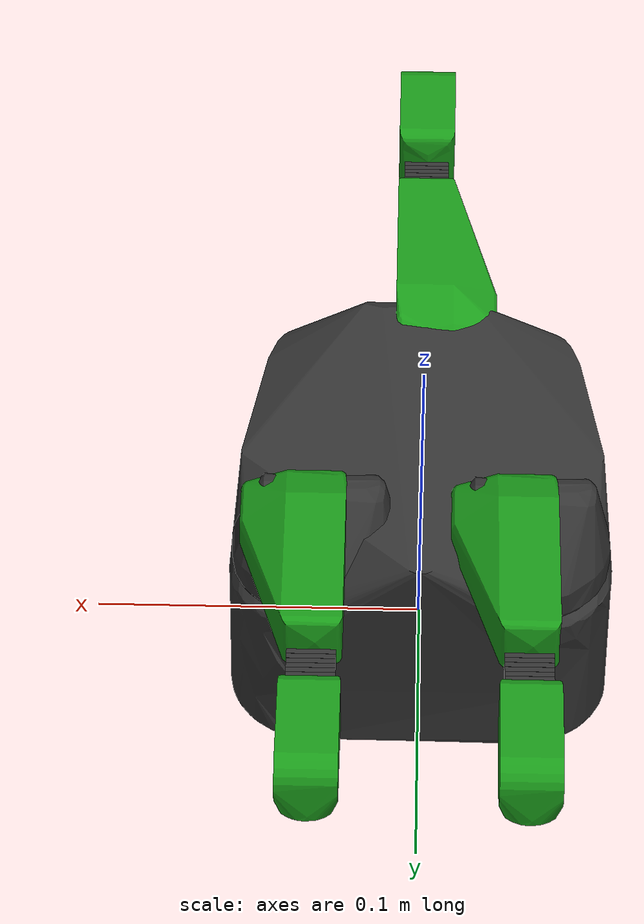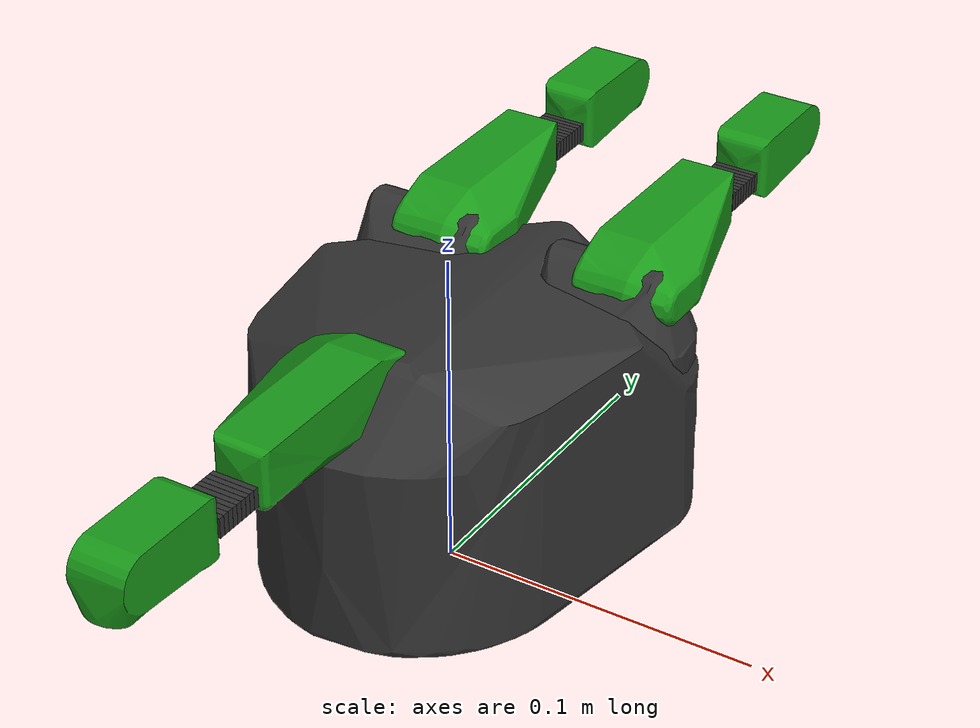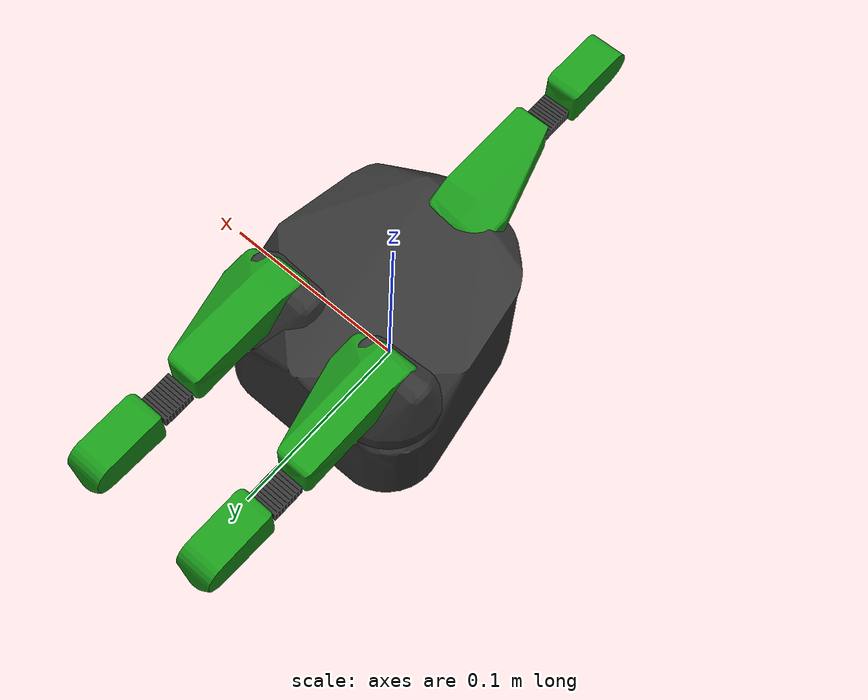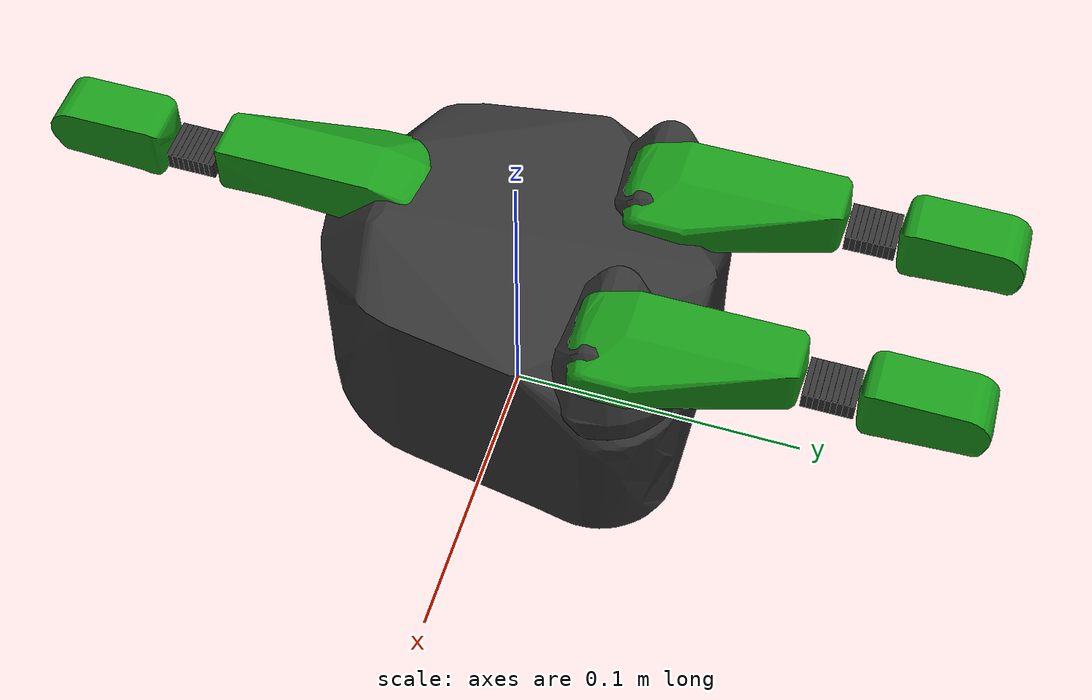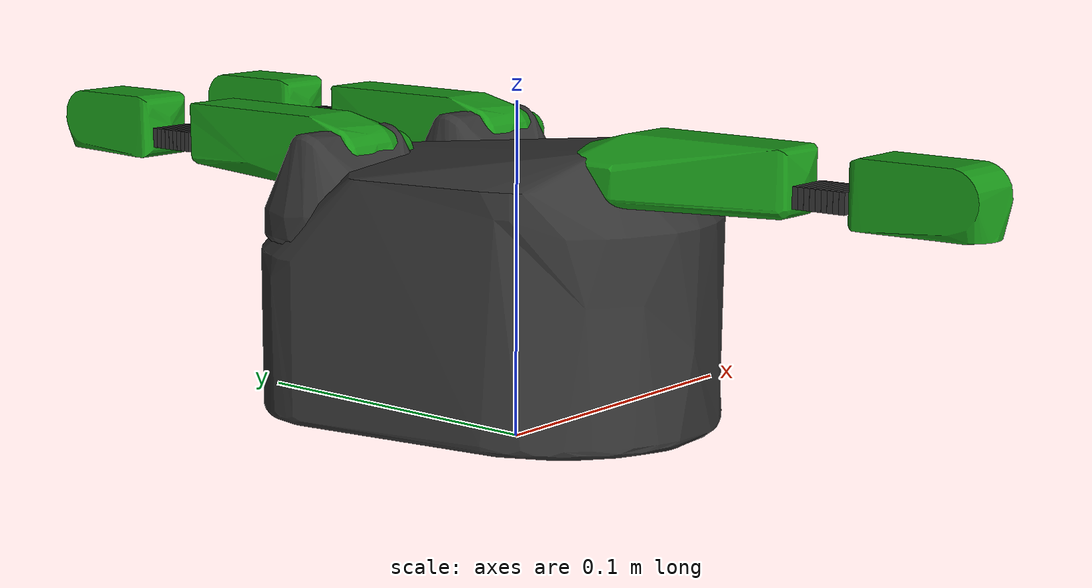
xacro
<?xml version="1.0"?>
<robot xmlns:xacro="http://www.ros.org/wiki/xacro" name="armh_handle">

<!-- roslaunch urdf_tutorial display.launch model:=handle.urdf gui:=True -->
<!-- rosrun xacro xacro.py handle_urdf.xacro > handle.urdf -->
<!-- tip: use measurements from solid to find the origins and length -->

<xacro:property name="flex_joint_length" value=".016" />
<xacro:property name="flex_joint_steps" value="9" />
<xacro:property name="proximal_link_length" value=".062" />
<xacro:property name="pi" value="3.14" />

<xacro:macro name="flex_link" params="finger_id link_id">
  <link name="finger[${finger_id}]/flexible_link_${link_id}">
    <inertial>
      <mass value="0.1"/>
      <origin xyz="0 0 0"/>
      <inertia ixx="0.001" ixy="0.0" ixz="0.0" iyy="0.001" iyz="0.0" izz="0.001"/>
    </inertial>
    <collision>
      <geometry>
        <box size=".014 ${(flex_joint_length/flex_joint_steps)*0.99} .006"/>
      </geometry>
      <origin xyz="0 0 0" rpy="${pi/2} 0 0"/>
    </collision>
    <visual>
      <geometry>
        <box size=".014 ${(flex_joint_length/flex_joint_steps)*0.99} .006"/>
      </geometry>
      <origin xyz="0 0 0" rpy="${pi/2} 0 0"/>
      <material name="darkgray">
        <color rgba="0.2 0.2 0.2 1"/>
      </material>
    </visual>
  </link>

</xacro:macro>

<xacro:macro name="flex_joint" params="finger_id link_from link_to">
  <joint name="finger[${finger_id}]/flexible_joint_flex_from_${link_from}_to_${link_to}" type="revolute">
    <parent link="finger[${finger_id}]/flexible_link_${link_from}"/>
    <child link="finger[${finger_id}]/flexible_link_hidden_between_${link_from}_and_${link_to}"/>
    <origin xyz="0 0 ${flex_joint_length/flex_joint_steps}" />
    <axis xyz="-1 0 0"/>
    <limit effort="1000.0" lower="0.0" upper="${pi/2}" velocity="0.5"/>
  </joint>
  <link name="finger[${finger_id}]/flexible_link_hidden_between_${link_from}_and_${link_to}">
    <inertial>
      <mass value="0.1"/>
      <origin xyz="0 0 0"/>
      <inertia ixx="0.001" ixy="0.0" ixz="0.0" iyy="0.001" iyz="0.0" izz="0.001"/>
    </inertial>
    <collision>
      <geometry>
        <box size="0 0 0"/>
      </geometry>
      <origin xyz="0 0 0" rpy="0 0 0"/>
    </collision>
    <visual>
      <geometry>
        <box size="0 0 0"/>
      </geometry>
      <origin xyz="0 0 0" rpy="0 0 0"/>
    </visual>
  </link>
  <joint name="finger[${finger_id}]/flexible_joint_twist_from_${link_from}_to_${link_to}" type="revolute">
    <parent link="finger[${finger_id}]/flexible_link_hidden_between_${link_from}_and_${link_to}"/>
    <child link="finger[${finger_id}]/flexible_link_${link_to}"/>
    <origin xyz="0 0 0" />
    <axis xyz="0 0 1"/>
    <limit effort="1000.0" lower="0.0" upper="${pi/2}" velocity="0.5"/>
  </joint>
</xacro:macro>

<xacro:macro name="flex_joint_connector" params="finger_id">

  <!-- make a connection between proximal to flexible-->
  <joint name="finger[${finger_id}]/flexible_joint_flex_from_proximal_to_1" type="revolute">
    <parent link="finger[${finger_id}]/proximal_link"/>
    <child link="finger[${finger_id}]/flexible_link_hidden_between_proximal_link_and_1"/>
    <origin xyz="0 0 ${proximal_link_length}" />
    <axis xyz="-1 0 0"/>
    <limit effort="1000.0" lower="0.0" upper="${pi/2}" velocity="0.5"/>
  </joint>
  <link name="finger[${finger_id}]/flexible_link_hidden_between_proximal_link_and_1">
    <inertial>
      <mass value="0.1"/>
      <origin xyz="0 0 0"/>
      <inertia ixx="0.001" ixy="0.0" ixz="0.0" iyy="0.001" iyz="0.0" izz="0.001"/>
    </inertial>
    <collision>
      <geometry>
        <box size="0 0 0"/>
      </geometry>
      <origin xyz="0 0 0" rpy="0 0 0"/>
    </collision>
    <visual>
      <geometry>
        <box size="0 0 0"/>
      </geometry>
      <origin xyz="0 0 0" rpy="0 0 0"/>
    </visual>
  </link>
  <joint name="finger[${finger_id}]/flexible_joint_twist_from_proximal_to_1" type="revolute">
    <parent link="finger[${finger_id}]/flexible_link_hidden_between_proximal_link_and_1"/>
    <child link="finger[${finger_id}]/flexible_link_1"/>
    <origin xyz="0 0 0" />
    <axis xyz="0 0 1"/>
    <limit effort="1000.0" lower="0.0" upper="${pi/2}" velocity="0.5"/>
  </joint>

  <!-- make a connection between flexible to distal-->
  <joint name="finger[${finger_id}]/flexible_joint_flex_from_9_to_distal" type="revolute">
    <parent link="finger[${finger_id}]/flexible_link_9"/>
    <child link="finger[${finger_id}]/flexible_link_hidden_between_9_and_distal_link"/>
    <origin xyz="0 0 ${flex_joint_length/flex_joint_steps}" />
    <axis xyz="-1 0 0"/>
    <limit effort="1000.0" lower="0.0" upper="${pi/2}" velocity="0.5"/>
  </joint>
  <link name="finger[${finger_id}]/flexible_link_hidden_between_9_and_distal_link">
    <inertial>
      <mass value="0.1"/>
      <origin xyz="0 0 0"/>
      <inertia ixx="0.001" ixy="0.0" ixz="0.0" iyy="0.001" iyz="0.0" izz="0.001"/>
    </inertial>
    <collision>
      <geometry>
        <box size="0 0 0"/>
      </geometry>
      <origin xyz="0 0 0" rpy="0 0 0"/>
    </collision>
    <visual>
      <geometry>
        <box size="0 0 0"/>
      </geometry>
      <origin xyz="0 0 0" rpy="0 0 0"/>
    </visual>
  </link>
  <joint name="finger[${finger_id}]/flexible_joint_twist_from_9_to_distal" type="revolute">
    <parent link="finger[${finger_id}]/flexible_link_hidden_between_9_and_distal_link"/>
    <child link="finger[${finger_id}]/distal_link"/>
    <origin xyz="0 0 0" />
    <axis xyz="0 0 1"/>
    <limit effort="1000.0" lower="0.0" upper="${pi/2}" velocity="0.5"/>
  </joint>
</xacro:macro>

<xacro:flex_link finger_id="0" link_id="1"/>
<xacro:flex_link finger_id="0" link_id="2"/>
<xacro:flex_link finger_id="0" link_id="3"/>
<xacro:flex_link finger_id="0" link_id="4"/>
<xacro:flex_link finger_id="0" link_id="5"/>
<xacro:flex_link finger_id="0" link_id="6"/>
<xacro:flex_link finger_id="0" link_id="7"/>
<xacro:flex_link finger_id="0" link_id="8"/>
<xacro:flex_link finger_id="0" link_id="9"/>
<xacro:flex_joint finger_id="0" link_from="1" link_to="2"/>
<xacro:flex_joint finger_id="0" link_from="2" link_to="3"/>
<xacro:flex_joint finger_id="0" link_from="3" link_to="4"/>
<xacro:flex_joint finger_id="0" link_from="4" link_to="5"/>
<xacro:flex_joint finger_id="0" link_from="5" link_to="6"/>
<xacro:flex_joint finger_id="0" link_from="6" link_to="7"/>
<xacro:flex_joint finger_id="0" link_from="7" link_to="8"/>
<xacro:flex_joint finger_id="0" link_from="8" link_to="9"/>
<xacro:flex_joint_connector finger_id="0"/>

<xacro:flex_link finger_id="1" link_id="1"/>
<xacro:flex_link finger_id="1" link_id="2"/>
<xacro:flex_link finger_id="1" link_id="3"/>
<xacro:flex_link finger_id="1" link_id="4"/>
<xacro:flex_link finger_id="1" link_id="5"/>
<xacro:flex_link finger_id="1" link_id="6"/>
<xacro:flex_link finger_id="1" link_id="7"/>
<xacro:flex_link finger_id="1" link_id="8"/>
<xacro:flex_link finger_id="1" link_id="9"/>
<xacro:flex_joint finger_id="1" link_from="1" link_to="2"/>
<xacro:flex_joint finger_id="1" link_from="2" link_to="3"/>
<xacro:flex_joint finger_id="1" link_from="3" link_to="4"/>
<xacro:flex_joint finger_id="1" link_from="4" link_to="5"/>
<xacro:flex_joint finger_id="1" link_from="5" link_to="6"/>
<xacro:flex_joint finger_id="1" link_from="6" link_to="7"/>
<xacro:flex_joint finger_id="1" link_from="7" link_to="8"/>
<xacro:flex_joint finger_id="1" link_from="8" link_to="9"/>
<xacro:flex_joint_connector finger_id="1"/>

<xacro:flex_link finger_id="2" link_id="1"/>
<xacro:flex_link finger_id="2" link_id="2"/>
<xacro:flex_link finger_id="2" link_id="3"/>
<xacro:flex_link finger_id="2" link_id="4"/>
<xacro:flex_link finger_id="2" link_id="5"/>
<xacro:flex_link finger_id="2" link_id="6"/>
<xacro:flex_link finger_id="2" link_id="7"/>
<xacro:flex_link finger_id="2" link_id="8"/>
<xacro:flex_link finger_id="2" link_id="9"/>
<xacro:flex_joint finger_id="2" link_from="1" link_to="2"/>
<xacro:flex_joint finger_id="2" link_from="2" link_to="3"/>
<xacro:flex_joint finger_id="2" link_from="3" link_to="4"/>
<xacro:flex_joint finger_id="2" link_from="4" link_to="5"/>
<xacro:flex_joint finger_id="2" link_from="5" link_to="6"/>
<xacro:flex_joint finger_id="2" link_from="6" link_to="7"/>
<xacro:flex_joint finger_id="2" link_from="7" link_to="8"/>
<xacro:flex_joint finger_id="2" link_from="8" link_to="9"/>
<xacro:flex_joint_connector finger_id="2"/>

<link name="base_link">
    <inertial>
      <mass value="0.1"/>
      <origin xyz="0 0 0"/>
      <inertia ixx="0.001" ixy="0.0" ixz="0.0" iyy="0.001" iyz="0.0" izz="0.001"/>
    </inertial>
  <collision>
    <geometry>
      <mesh filename="package://irobot_hand/meshes/palm.stl"/>
    </geometry>
    <origin rpy="0 0 0" xyz="0 -0.038 -0.023"/>
  </collision>
  <visual>
    <geometry>
      <mesh filename="package://irobot_hand/meshes/palm.stl"/>
    </geometry>
    <material name="darkgray">
      <color rgba="0.2 0.2 0.2 1"/>
    </material>
    <origin rpy="0 0 0" xyz="0 -0.038 -0.023"/>
  </visual>
</link>

<link name="finger[0]/base_rotation_link">
    <inertial>
      <mass value="0.1"/>
      <origin xyz="0 0 0"/>
      <inertia ixx="0.001" ixy="0.0" ixz="0.0" iyy="0.001" iyz="0.0" izz="0.001"/>
    </inertial>
  <collision>
    <geometry>
      <mesh filename="package://irobot_hand/meshes/finger_base.stl"/>
    </geometry>
    <origin rpy="${pi/2} 0 0" xyz="0 0 0"/>
  </collision>
  <visual>
    <geometry>
      <mesh filename="package://irobot_hand/meshes/finger_base.stl"/>
    </geometry>
    <material name="darkgray">
      <color rgba="0.2 0.2 0.2 1"/>
    </material>
    <origin rpy="${pi/2} 0 0" xyz="0 0 0"/>
  </visual>
</link>

<link name="finger[0]/proximal_link">
    <inertial>
      <mass value="0.1"/>
      <origin xyz="0 0 0"/>
      <inertia ixx="0.001" ixy="0.0" ixz="0.0" iyy="0.001" iyz="0.0" izz="0.001"/>
    </inertial>
  <collision>
    <geometry>
      <mesh filename="package://irobot_hand/meshes/finger_proximal.stl"/>
    </geometry>
    <origin rpy="${pi/2} -${pi/2} 0" xyz="0 0 0"/>
  </collision>
  <visual>
    <geometry>
      <mesh filename="package://irobot_hand/meshes/finger_proximal.stl"/>
    </geometry>
    <material name="green">
      <color rgba="0.1 0.6 0.1 1"/>
    </material>
    <origin rpy="${pi/2} -${pi/2} 0" xyz="0 0 0"/>
  </visual>
</link>

<link name="finger[0]/distal_link">
    <inertial>
      <mass value="0.1"/>
      <origin xyz="0 0 0"/>
      <inertia ixx="0.001" ixy="0.0" ixz="0.0" iyy="0.001" iyz="0.0" izz="0.001"/>
    </inertial>
  <collision>
    <geometry>
      <mesh filename="package://irobot_hand/meshes/finger_distal.stl"/>
    </geometry>
    <origin rpy="0 ${pi} 0" xyz="0 0 0"/>
  </collision>
  <visual>
    <geometry>
      <mesh filename="package://irobot_hand/meshes/finger_distal.stl"/>
    </geometry>
    <material name="green">
      <color rgba="0.1 0.6 0.1 1"/>
    </material>
    <origin rpy="0 ${pi} 0" xyz="0 0 0"/>
  </visual>
</link>

<link name="finger[1]/base_rotation_link">
    <inertial>
      <mass value="0.1"/>
      <origin xyz="0 0 0"/>
      <inertia ixx="0.001" ixy="0.0" ixz="0.0" iyy="0.001" iyz="0.0" izz="0.001"/>
    </inertial>
  <collision>
    <geometry>
      <mesh filename="package://irobot_hand/meshes/finger_base.stl"/>
    </geometry>
    <origin rpy="${pi/2} 0 0" xyz="0 0 0"/>
  </collision>
  <visual>
    <geometry>
      <mesh filename="package://irobot_hand/meshes/finger_base.stl"/>
    </geometry>
    <material name="darkgray">
      <color rgba="0.2 0.2 0.2 1"/>
    </material>
    <origin rpy="${pi/2} 0 0" xyz="0 0 0"/>
  </visual>
</link>

<link name="finger[1]/proximal_link">
    <inertial>
      <mass value="0.1"/>
      <origin xyz="0 0 0"/>
      <inertia ixx="0.001" ixy="0.0" ixz="0.0" iyy="0.001" iyz="0.0" izz="0.001"/>
    </inertial>
  <collision>
    <geometry>
      <mesh filename="package://irobot_hand/meshes/finger_proximal.stl"/>
    </geometry>
    <origin rpy="${pi/2} -${pi/2} 0" xyz="0 0 0"/>
  </collision>
  <visual>
    <geometry>
      <mesh filename="package://irobot_hand/meshes/finger_proximal.stl"/>
    </geometry>
    <material name="green">
      <color rgba="0.1 0.6 0.1 1"/>
    </material>
    <origin rpy="${pi/2} -${pi/2} 0" xyz="0 0 0"/>
  </visual>
</link>

<link name="finger[1]/distal_link">
    <inertial>
      <mass value="0.1"/>
      <origin xyz="0 0 0"/>
      <inertia ixx="0.001" ixy="0.0" ixz="0.0" iyy="0.001" iyz="0.0" izz="0.001"/>
    </inertial>
  <collision>
    <geometry>
      <mesh filename="package://irobot_hand/meshes/finger_distal.stl"/>
    </geometry>
    <origin rpy="0 ${pi} 0" xyz="0 0 0"/>
  </collision>
  <visual>
    <geometry>
      <mesh filename="package://irobot_hand/meshes/finger_distal.stl"/>
    </geometry>
    <material name="green">
      <color rgba="0.1 0.6 0.1 1"/>
    </material>
    <origin rpy="0 ${pi} 0" xyz="0 0 0"/>
  </visual>
</link>

<link name="finger[2]/proximal_link">
    <inertial>
      <mass value="0.1"/>
      <origin xyz="0 0 0"/>
      <inertia ixx="0.001" ixy="0.0" ixz="0.0" iyy="0.001" iyz="0.0" izz="0.001"/>
    </inertial>
  <collision>
    <geometry>
      <mesh filename="package://irobot_hand/meshes/finger_proximal.stl"/>
    </geometry>
    <origin rpy="${pi/2} -${pi/2} 0" xyz="0 0 0"/>
  </collision>
  <visual>
    <geometry>
      <mesh filename="package://irobot_hand/meshes/finger_proximal.stl"/>
    </geometry>
    <material name="green">
      <color rgba="0.1 0.6 0.1 1"/>
    </material>
    <origin rpy="${pi/2} -${pi/2} 0" xyz="0 0 0"/>
  </visual>
</link>

<link name="finger[2]/distal_link">
    <inertial>
      <mass value="0.1"/>
      <origin xyz="0 0 0"/>
      <inertia ixx="0.001" ixy="0.0" ixz="0.0" iyy="0.001" iyz="0.0" izz="0.001"/>
    </inertial>
  <collision>
    <geometry>
      <mesh filename="package://irobot_hand/meshes/finger_distal.stl"/>
    </geometry>
    <origin rpy="0 ${pi} 0" xyz="0 0 0"/>
  </collision>
  <visual>
    <geometry>
      <mesh filename="package://irobot_hand/meshes/finger_distal.stl"/>
    </geometry>
    <material name="green">
      <color rgba="0.1 0.6 0.1 1"/>
    </material>
    <origin rpy="0 ${pi} 0" xyz="0 0 0"/>
  </visual>
</link>

<joint name="finger[0]/joint_base_rotation" type="revolute">
  <parent link="base_link"/>
  <child link="finger[0]/base_rotation_link"/>
  <origin xyz="0.03075 0.038 0.069477" rpy="0 0 0" />
  <axis xyz="0 0 -1"/>
  <limit effort="1000.0" lower="0.0" upper="${pi/2}" velocity="0.5"/>
</joint>

<joint name="finger[0]/joint_base" type="revolute">
  <parent link="finger[0]/base_rotation_link"/>
  <child link="finger[0]/proximal_link"/>
  <origin xyz="0 0 0.0135" rpy="${pi/2} 0 -${pi}" />
  <axis xyz="-1 0 0"/>
  <limit effort="1000.0" lower="0.0" upper="${pi/2}" velocity="0.5"/>

</joint>

<joint name="finger[1]/joint_base_rotation" type="revolute">
  <parent link="base_link"/>
  <child link="finger[1]/base_rotation_link"/>
  <origin xyz="-0.03075 0.038 0.069477" rpy="0 0 0" />
  <axis xyz="0 0 1"/>
  <limit effort="1000.0" lower="0.0" upper="${pi/2}" velocity="0.5"/>
</joint>

<joint name="finger[1]/joint_base" type="revolute">
  <parent link="finger[1]/base_rotation_link"/>
  <child link="finger[1]/proximal_link"/>
  <origin xyz="0 0 0.0135" rpy="${pi/2} 0 -${pi}" />
  <axis xyz="-1 0 0"/>
  <limit effort="1000.0" lower="0.0" upper="${pi/2}" velocity="0.5"/>
</joint>

<joint name="finger[2]/joint_base" type="revolute">
  <parent link="base_link"/>
  <child link="finger[2]/proximal_link"/>
  <origin xyz="0 -0.038 0.082755" rpy="${pi/2} 0 0" />
  <axis xyz="-1 0 0"/>
  <limit effort="1000.0" lower="0.0" upper="${pi/2}" velocity="0.5"/>
</joint>

</robot>
